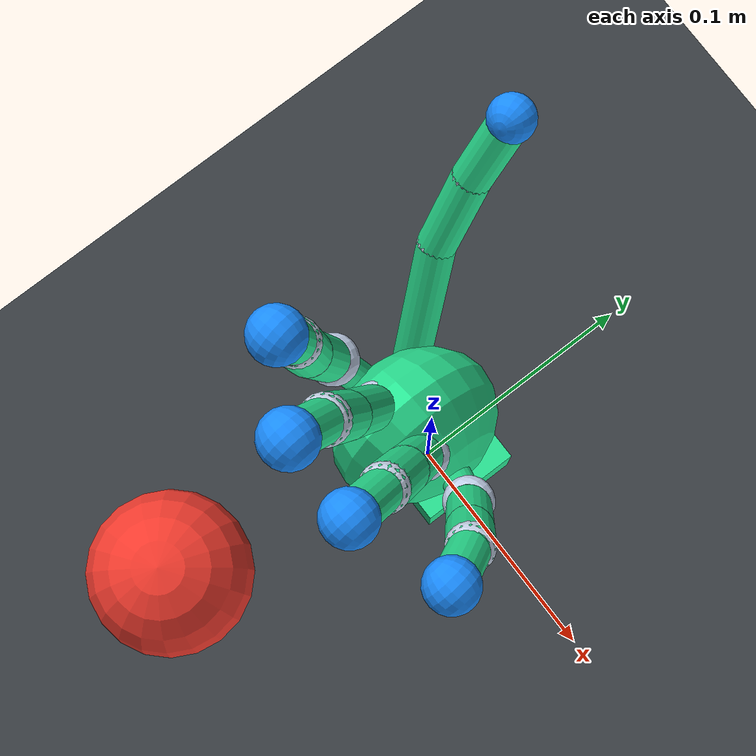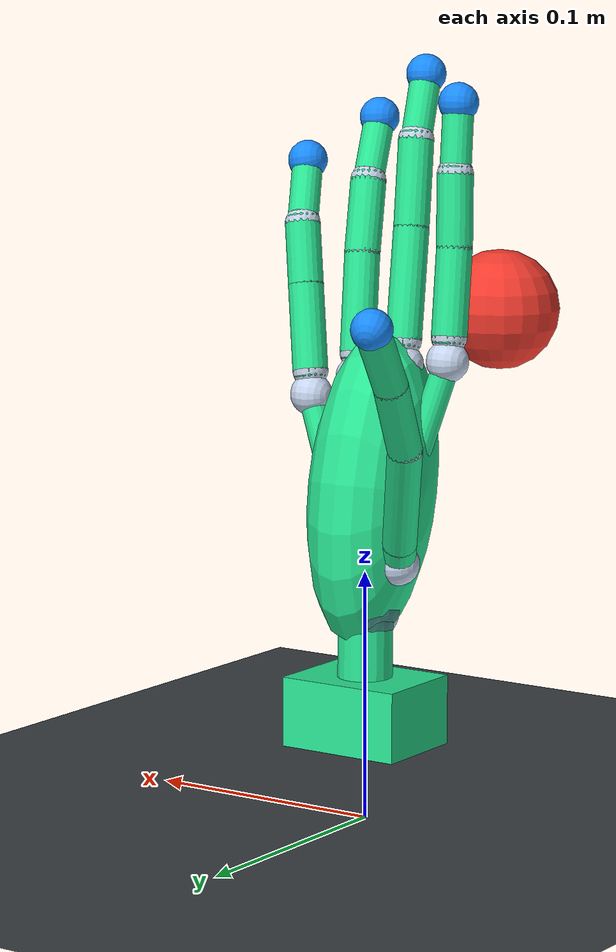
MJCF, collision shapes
<?xml version='1.0' encoding='utf-8'?>
<mujoco model="hand_stage1_ball_scene_visual_clean_collision_proxy">
  <include file="hand_stage1_visual_clean_collision_proxy.xml" />
  <visual>
    <global azimuth="145" elevation="-25" offwidth="1400" offheight="1000" />
  </visual>
  <asset>
    <texture type="2d" name="export2_ground_checker" builtin="checker" rgb1="0.18 0.20 0.22" rgb2="0.28 0.30 0.32" width="300" height="300" />
    <material name="export2_ground_mat" texture="export2_ground_checker" texrepeat="4 4" reflectance="0.15" />
  </asset>
  <worldbody>
    <light name="key_light" pos="0 -0.35 0.85" dir="0 0 -1" directional="true" />
    <light name="fill_light" pos="-0.35 0.25 0.55" />
    <geom name="ground" type="plane" pos="0 0 0" size="0.5 0.5 0.02" material="export2_ground_mat" contype="1" conaffinity="3" />
    <body name="ball" pos="0 -0.1 0.195">
      <freejoint name="ball_freejoint" />
      <geom name="ball_geom" type="sphere" size="0.025" rgba="0.95 0.23 0.18 1" mass="0.03" friction="0.8 0.05 0.001" condim="3" contype="2" conaffinity="1" />
    </body>
    <camera name="front" pos="0.20 -0.34 0.30" xyaxes="0.834219 0.551433 0 -0.16379 0.247785 0.954869" fovy="45" />
    <camera name="side" pos="0.34 0.02 0.25" xyaxes="-0.190477 0.981692 0 -0.169999 -0.0329848 0.984892" fovy="45" />
    <camera name="top" pos="0.02 -0.06 0.55" xyaxes="0.707107 0.707107 0 -0.705346 0.705346 0.0705346" fovy="45" />
    <camera name="palm" pos="0.11 -0.20 0.24" xyaxes="0.875 0.484 0 -0.204 0.368 0.907" fovy="34" />
    <camera name="finger_root_closeup" pos="0.11 -0.20 0.25" xyaxes="0.875 0.484 0 -0.204 0.368 0.907" fovy="24" />
    <camera name="thumb_root_closeup" pos="-0.15 -0.11 0.19" xyaxes="0.594 -0.804 0 0.372 0.275 0.887" fovy="26" />
    <camera name="index_finger_closeup" pos="-0.14 -0.17 0.36" xyaxes="0.844 -0.537 0 0.211 0.331 0.920" fovy="24" />
    <camera name="full_hand_with_ball" pos="0.23 -0.38 0.34" xyaxes="0.850 0.527 0 -0.165 0.267 0.949" fovy="48" />
  </worldbody>
</mujoco>

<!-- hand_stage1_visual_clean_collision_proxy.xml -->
<mujoco model="hand_stage1_visual_clean_collision_proxy">

  <compiler angle="radian" autolimits="true" meshdir="../meshes_clean_export2" />

  <option timestep="0.002" gravity="0 0 -9.81" />

  <default>

    <joint damping="0.08" armature="0.0001" />

    <geom solref="0.01 1" solimp="0.9 0.95 0.001" />

  </default>

  <statistic center="0.005 -0.045 0.18" extent="0.24" />

  <worldbody>

    <body name="hand_base_link" pos="0 0 0.05">

      <geom name="hand_base_link_clean_visual" type="mesh" mesh="hand_base_link_clean_mesh" rgba="0.78 0.82 0.90 1" contype="0" conaffinity="0" group="2" />
      <inertial pos="0 0 0" mass="0.012576523" diaginertia="1e-5 1e-5 1e-5" />

      <geom name="hand_base_link_collision_proxy" type="box" pos="0 0 -0.006" size="0.026 0.020 0.014" rgba="0.16 0.90 0.58 0.34" friction="0.8 0.04 0.001" contype="1" conaffinity="2" condim="3" group="3" />

      <geom name="hand_base_link_axis_marker" type="capsule" fromto="0 0 -0.020 0 0 0.020" size="0.006" rgba="0.58 0.64 0.74 1" contype="0" conaffinity="0" group="4" />

      <body name="wrist_middle_link" pos="0 0 0.015" quat="0.021731799 0.031494284 -0.70640636 -0.70677146">

        <geom name="wrist_middle_link_clean_visual" type="mesh" mesh="wrist_middle_link_clean_mesh" rgba="0.78 0.82 0.90 1" contype="0" conaffinity="0" group="2" />
        <joint name="wrist_1_joint" type="hinge" axis="0 0 -1" damping="0.08" armature="0.0001" limited="true" range="-0.8 0.8" />

        <inertial pos="0 0 0" mass="0.010062" diaginertia="1e-5 1e-5 1e-5" />

        <geom name="wrist_middle_link_collision_proxy" type="capsule" fromto="0 -0.018 0 0 0.018 0" size="0.011" rgba="0.16 0.90 0.58 0.34" friction="0.8 0.04 0.001" contype="1" conaffinity="2" condim="3" group="3" />

        <geom name="wrist_middle_link_joint_marker" type="sphere" pos="0 0 0" size="0.007" rgba="0.72 0.78 0.88 0.85" contype="0" conaffinity="0" group="4" />

        <body name="palm_link" pos="-0.0008 0.020264 -0.0007" quat="0.70420975 -0.063939763 -0.70421022 0.063939763">

          <geom name="palm_link_clean_visual" type="mesh" mesh="palm_link_clean_mesh" rgba="0.78 0.82 0.90 1" contype="0" conaffinity="0" group="2" />
          <joint name="wrist_2_joint" type="hinge" axis="0 0 -1" damping="0.08" armature="0.0001" limited="true" range="-0.8 0.8" />

          <inertial pos="0 0 0" mass="0.14137095" diaginertia="1e-5 1e-5 1e-5" />

          <geom name="palm_link_hub" type="sphere" pos="0 0 0" size="0.014" rgba="0.38 0.45 0.56 0.65" contype="0" conaffinity="0" group="4" />

          <geom name="palm_link_collision_proxy_ellipsoid" type="ellipsoid" pos="0 0.048 0.002" size="0.030 0.064 0.024" rgba="0.16 0.90 0.58 0.34" friction="0.8 0.04 0.001" contype="1" conaffinity="2" condim="3" group="3" />

          <geom name="palm_link_index_mcp_flex_joint_collision_proxy_spoke" type="capsule" fromto="0 0 0 -0.0014333 0.10034 -0.024803" size="0.0055" rgba="0.16 0.90 0.58 0.34" friction="0.8 0.04 0.001" contype="1" conaffinity="2" condim="3" group="3" />

          <geom name="palm_link_0_joint_marker" type="sphere" pos="-0.0014333 0.10034 -0.024803" size="0.0085" rgba="0.78 0.84 0.94 0.95" contype="0" conaffinity="0" group="4" />

          <geom name="palm_link_middle_mcp_flex_joint_collision_proxy_spoke" type="capsule" fromto="0 0 0 -0.0014333 0.097567 -0.0048026" size="0.0055" rgba="0.16 0.90 0.58 0.34" friction="0.8 0.04 0.001" contype="1" conaffinity="2" condim="3" group="3" />

          <geom name="palm_link_1_joint_marker" type="sphere" pos="-0.0014333 0.097567 -0.0048026" size="0.0085" rgba="0.78 0.84 0.94 0.95" contype="0" conaffinity="0" group="4" />

          <geom name="palm_link_ring_mcp_flex_joint_collision_proxy_spoke" type="capsule" fromto="0 0 0 -0.0014333 0.090989 0.015197" size="0.0055" rgba="0.16 0.90 0.58 0.34" friction="0.8 0.04 0.001" contype="1" conaffinity="2" condim="3" group="3" />

          <geom name="palm_link_2_joint_marker" type="sphere" pos="-0.0014333 0.090989 0.015197" size="0.0085" rgba="0.78 0.84 0.94 0.95" contype="0" conaffinity="0" group="4" />

          <geom name="palm_link_little_mcp_flex_joint_collision_proxy_spoke" type="capsule" fromto="0 0 0 -0.0014333 0.082348 0.035197" size="0.0055" rgba="0.16 0.90 0.58 0.34" friction="0.8 0.04 0.001" contype="1" conaffinity="2" condim="3" group="3" />

          <geom name="palm_link_3_joint_marker" type="sphere" pos="-0.0014333 0.082348 0.035197" size="0.0085" rgba="0.78 0.84 0.94 0.95" contype="0" conaffinity="0" group="4" />

          <geom name="palm_link_thumb_root_connector_fixed_joint_collision_proxy_spoke" type="capsule" fromto="0 0 0 0.0064688 0.019332 -0.016418" size="0.0055" rgba="0.16 0.90 0.58 0.34" friction="0.8 0.04 0.001" contype="1" conaffinity="2" condim="3" group="3" />

          <geom name="palm_link_4_joint_marker" type="sphere" pos="0.0064688 0.019332 -0.016418" size="0.0085" rgba="0.78 0.84 0.94 0.95" contype="0" conaffinity="0" group="4" />

          <body name="index_mcp_flex_link" pos="-0.0014333 0.10034 -0.024803" quat="0.70710548 0 0.70710808 0">

            <geom name="index_mcp_flex_link_clean_visual" type="mesh" mesh="index_mcp_flex_link_clean_mesh" rgba="0.78 0.82 0.90 1" contype="0" conaffinity="0" group="2" />
            <joint name="index_mcp_flex_joint" type="hinge" axis="0 0 -1" damping="0.08" armature="0.0001" limited="true" range="-0.5 0.5" />

            <inertial pos="0 0 0" mass="0.0017548" diaginertia="1e-5 1e-5 1e-5" />

            <geom name="index_mcp_flex_link_collision_proxy" type="capsule" fromto="0 0 0 -0.00051676 0.0097417 -0.00026674" size="0.0058" rgba="0.16 0.90 0.58 0.34" friction="0.9 0.04 0.001" contype="1" conaffinity="2" condim="3" group="3" />

            <geom name="index_mcp_flex_link_base_marker" type="sphere" pos="0 0 0" size="0.0058" rgba="0.78 0.83 0.91 0.9" contype="0" conaffinity="0" group="4" />

            <geom name="index_mcp_flex_link_tip_marker" type="sphere" pos="-0.00051676 0.0097417 -0.00026674" size="0.0058" rgba="0.78 0.83 0.91 0.9" contype="0" conaffinity="0" group="4" />

            <body name="index_proximal_phalanx_link" pos="-0.00051676 0.0097417 -0.00026674" quat="0.70685724 -0.018735042 0.70685984 0.018735111">

              <geom name="index_proximal_phalanx_link_clean_visual" type="mesh" mesh="index_proximal_phalanx_link_clean_mesh" rgba="0.78 0.82 0.90 1" contype="0" conaffinity="0" group="2" />
              <joint name="index_mcp_abd_joint" type="hinge" axis="0 0 -1" damping="0.08" armature="0.0001" limited="true" range="-0.2 1.2" />

              <inertial pos="0 0 0" mass="0.0070311" diaginertia="1e-5 1e-5 1e-5" />

              <geom name="index_proximal_phalanx_link_collision_proxy" type="capsule" fromto="0 0 0 -0.00021096 0.034999 0.00025" size="0.0072" rgba="0.16 0.90 0.58 0.34" friction="0.9 0.04 0.001" contype="1" conaffinity="2" condim="3" group="3" />

              <geom name="index_proximal_phalanx_link_base_marker" type="sphere" pos="0 0 0" size="0.0072" rgba="0.78 0.83 0.91 0.9" contype="0" conaffinity="0" group="4" />

              <geom name="index_proximal_phalanx_link_tip_marker" type="sphere" pos="-0.00021096 0.034999 0.00025" size="0.0072" rgba="0.78 0.83 0.91 0.9" contype="0" conaffinity="0" group="4" />

              <body name="index_proximal_inter_link" pos="-0.00021096 0.034999 0.00025" quat="0.97605079 0.012184661 0.058846008 0.20907783">

                <geom name="index_proximal_inter_link_clean_visual" type="mesh" mesh="index_proximal_inter_link_clean_mesh" rgba="0.78 0.82 0.90 1" contype="0" conaffinity="0" group="2" />
                <joint name="index_pip_joint" type="hinge" axis="0.10977 -0.048393 -0.99278" damping="0.08" armature="0.0001" limited="true" range="0 1.57" />

                <inertial pos="0 0 0" mass="0.0059704873" diaginertia="1e-5 1e-5 1e-5" />

                <geom name="index_proximal_inter_link_collision_proxy" type="capsule" fromto="0 0 0 0.0097266 0.027252 -0.00045437" size="0.0072" rgba="0.16 0.90 0.58 0.34" friction="0.9 0.04 0.001" contype="1" conaffinity="2" condim="3" group="3" />

                <geom name="index_proximal_inter_link_base_marker" type="sphere" pos="0 0 0" size="0.0072" rgba="0.78 0.83 0.91 0.9" contype="0" conaffinity="0" group="4" />

                <geom name="index_proximal_inter_link_tip_marker" type="sphere" pos="0.0097266 0.027252 -0.00045437" size="0.0072" rgba="0.78 0.83 0.91 0.9" contype="0" conaffinity="0" group="4" />

                <body name="index_distal_link" pos="0.0097266 0.027252 -0.00045437" quat="1 0 0 0">

                  <geom name="index_distal_link_clean_visual" type="mesh" mesh="index_distal_link_clean_mesh" rgba="0.78 0.82 0.90 1" contype="0" conaffinity="0" group="2" />
                  <joint name="index_dip_joint" type="hinge" axis="0 0 -1" damping="0.08" armature="0.0001" limited="true" range="0 1.2" />

                  <inertial pos="0 0 0" mass="0.0053528" diaginertia="1e-5 1e-5 1e-5" />

                  <geom name="index_distal_link_collision_proxy" type="capsule" fromto="0 0 0 0.011092027 0.02570919 -6.7061438e-05" size="0.0062" rgba="0.16 0.90 0.58 0.34" friction="0.9 0.04 0.001" contype="1" conaffinity="2" condim="3" group="3" />

                  <site name="index_tip_site" pos="0.011092027 0.02570919 -6.7061438e-05" size="0.008" rgba="0.10 0.55 1.0 1" type="sphere" />

                  <geom name="index_distal_link_base_marker" type="sphere" pos="0 0 0" size="0.0062" rgba="0.78 0.83 0.91 0.9" contype="0" conaffinity="0" group="4" />

                  <geom name="index_distal_link_tip_marker" type="sphere" pos="0.011092027 0.02570919 -6.7061438e-05" size="0.0062" rgba="0.78 0.83 0.91 0.9" contype="0" conaffinity="0" group="4" />

                </body>

              </body>

            </body>

          </body>

          <body name="middle_mcp_flex_link" pos="-0.0014333 0.097567 -0.0048026" quat="0.70710548 0 0.70710808 0">

            <geom name="middle_mcp_flex_link_clean_visual" type="mesh" mesh="middle_mcp_flex_link_clean_mesh" rgba="0.78 0.82 0.90 1" contype="0" conaffinity="0" group="2" />
            <joint name="middle_mcp_flex_joint" type="hinge" axis="0 0 -1" damping="0.08" armature="0.0001" limited="true" range="-0.5 0.5" />

            <inertial pos="0 0 0" mass="0.0017548053" diaginertia="1e-5 1e-5 1e-5" />

            <geom name="middle_mcp_flex_link_collision_proxy" type="capsule" fromto="0 0 0 -0.00064254 0.0097342 -0.00026674" size="0.0058" rgba="0.16 0.90 0.58 0.34" friction="0.9 0.04 0.001" contype="1" conaffinity="2" condim="3" group="3" />

            <geom name="middle_mcp_flex_link_base_marker" type="sphere" pos="0 0 0" size="0.0058" rgba="0.78 0.83 0.91 0.9" contype="0" conaffinity="0" group="4" />

            <geom name="middle_mcp_flex_link_tip_marker" type="sphere" pos="-0.00064254 0.0097342 -0.00026674" size="0.0058" rgba="0.78 0.83 0.91 0.9" contype="0" conaffinity="0" group="4" />

            <body name="middle_proximal_phalanx_link" pos="-0.00064254 0.0097342 -0.00026674" quat="0.48325474 0.48325652 0.51620245 0.51620056">

              <geom name="middle_proximal_phalanx_link_clean_visual" type="mesh" mesh="middle_proximal_phalanx_link_clean_mesh" rgba="0.78 0.82 0.90 1" contype="0" conaffinity="0" group="2" />
              <joint name="middle_mcp_abd_joint" type="hinge" axis="0 0 -1" damping="0.08" armature="0.0001" limited="true" range="-0.2 1.2" />

              <inertial pos="0 0 0" mass="0.0090532579" diaginertia="1e-5 1e-5 1e-5" />

              <geom name="middle_proximal_phalanx_link_collision_proxy" type="capsule" fromto="0 0 0 0.044915 -0.0027578 -0.0003" size="0.0072" rgba="0.16 0.90 0.58 0.34" friction="0.9 0.04 0.001" contype="1" conaffinity="2" condim="3" group="3" />

              <geom name="middle_proximal_phalanx_link_base_marker" type="sphere" pos="0 0 0" size="0.0072" rgba="0.78 0.83 0.91 0.9" contype="0" conaffinity="0" group="4" />

              <geom name="middle_proximal_phalanx_link_tip_marker" type="sphere" pos="0.044915 -0.0027578 -0.0003" size="0.0072" rgba="0.78 0.83 0.91 0.9" contype="0" conaffinity="0" group="4" />

              <body name="middle_proximal_inter_link" pos="0.044915 -0.0027578 -0.0003" quat="1 0 0 0">

                <geom name="middle_proximal_inter_link_clean_visual" type="mesh" mesh="middle_proximal_inter_link_clean_mesh" rgba="0.78 0.82 0.90 1" contype="0" conaffinity="0" group="2" />
                <joint name="middle_pip_joint" type="hinge" axis="0 0 -1" damping="0.08" armature="0.0001" limited="true" range="0 1.57" />

                <inertial pos="0 0 0" mass="0.0073249127" diaginertia="1e-5 1e-5 1e-5" />

                <geom name="middle_proximal_inter_link_collision_proxy" type="capsule" fromto="0 0 0 0.03498 -0.0011685 -0.0002" size="0.0072" rgba="0.16 0.90 0.58 0.34" friction="0.9 0.04 0.001" contype="1" conaffinity="2" condim="3" group="3" />

                <geom name="middle_proximal_inter_link_base_marker" type="sphere" pos="0 0 0" size="0.0072" rgba="0.78 0.83 0.91 0.9" contype="0" conaffinity="0" group="4" />

                <geom name="middle_proximal_inter_link_tip_marker" type="sphere" pos="0.03498 -0.0011685 -0.0002" size="0.0072" rgba="0.78 0.83 0.91 0.9" contype="0" conaffinity="0" group="4" />

                <body name="middle_distal_link" pos="0.03498 -0.0011685 -0.0002" quat="1 0 0 0">

                  <geom name="middle_distal_link_clean_visual" type="mesh" mesh="middle_distal_link_clean_mesh" rgba="0.78 0.82 0.90 1" contype="0" conaffinity="0" group="2" />
                  <joint name="middle_dip_joint" type="hinge" axis="0 0 -1" damping="0.08" armature="0.0001" limited="true" range="0 1.2" />

                  <inertial pos="0 0 0" mass="0.0053530376" diaginertia="1e-5 1e-5 1e-5" />

                  <geom name="middle_distal_link_collision_proxy" type="capsule" fromto="0 0 0 0.027301483 -0.006215095 -4.054405e-05" size="0.0062" rgba="0.16 0.90 0.58 0.34" friction="0.9 0.04 0.001" contype="1" conaffinity="2" condim="3" group="3" />

                  <site name="middle_tip_site" pos="0.027301483 -0.006215095 -4.054405e-05" size="0.008" rgba="0.10 0.55 1.0 1" type="sphere" />

                  <geom name="middle_distal_link_base_marker" type="sphere" pos="0 0 0" size="0.0062" rgba="0.78 0.83 0.91 0.9" contype="0" conaffinity="0" group="4" />

                  <geom name="middle_distal_link_tip_marker" type="sphere" pos="0.027301483 -0.006215095 -4.054405e-05" size="0.0062" rgba="0.78 0.83 0.91 0.9" contype="0" conaffinity="0" group="4" />

                </body>

              </body>

            </body>

          </body>

          <body name="ring_mcp_flex_link" pos="-0.0014333 0.090989 0.015197" quat="0.70710548 0 0.70710808 0">

            <geom name="ring_mcp_flex_link_clean_visual" type="mesh" mesh="ring_mcp_flex_link_clean_mesh" rgba="0.78 0.82 0.90 1" contype="0" conaffinity="0" group="2" />
            <joint name="ring_mcp_flex_joint" type="hinge" axis="-0.996 -0.089367 0" damping="0.08" armature="0.0001" limited="true" range="-0.5 0.5" />

            <inertial pos="0 0 0" mass="0.0017548" diaginertia="1e-5 1e-5 1e-5" />

            <geom name="ring_mcp_flex_link_collision_proxy" type="capsule" fromto="0 0 0 -0.00087181 0.0097164 -0.00026674" size="0.0058" rgba="0.16 0.90 0.58 0.34" friction="0.9 0.04 0.001" contype="1" conaffinity="2" condim="3" group="3" />

            <geom name="ring_mcp_flex_link_base_marker" type="sphere" pos="0 0 0" size="0.0058" rgba="0.78 0.83 0.91 0.9" contype="0" conaffinity="0" group="4" />

            <geom name="ring_mcp_flex_link_tip_marker" type="sphere" pos="-0.00087181 0.0097164 -0.00026674" size="0.0058" rgba="0.78 0.83 0.91 0.9" contype="0" conaffinity="0" group="4" />

            <body name="ring_proximal_phalanx_link" pos="-0.00087181 0.0097164 -0.00026674" quat="0.47713008 0.47713183 0.52186881 0.52186689">

              <geom name="ring_proximal_phalanx_link_clean_visual" type="mesh" mesh="ring_proximal_phalanx_link_clean_mesh" rgba="0.78 0.82 0.90 1" contype="0" conaffinity="0" group="2" />
              <joint name="ring_mcp_abd_joint" type="hinge" axis="0 0 -1" damping="0.08" armature="0.0001" limited="true" range="-0.2 1.2" />

              <inertial pos="0 0 0" mass="0.0079217428" diaginertia="1e-5 1e-5 1e-5" />

              <geom name="ring_proximal_phalanx_link_collision_proxy" type="capsule" fromto="0 0 0 0.039933 -0.0023102 -0.0003" size="0.0072" rgba="0.16 0.90 0.58 0.34" friction="0.9 0.04 0.001" contype="1" conaffinity="2" condim="3" group="3" />

              <geom name="ring_proximal_phalanx_link_base_marker" type="sphere" pos="0 0 0" size="0.0072" rgba="0.78 0.83 0.91 0.9" contype="0" conaffinity="0" group="4" />

              <geom name="ring_proximal_phalanx_link_tip_marker" type="sphere" pos="0.039933 -0.0023102 -0.0003" size="0.0072" rgba="0.78 0.83 0.91 0.9" contype="0" conaffinity="0" group="4" />

              <body name="ring_proximal_inter_link" pos="0.039933 -0.0023102 -0.0003" quat="0.70710548 0 0 -0.70710808">

                <geom name="ring_proximal_inter_link_clean_visual" type="mesh" mesh="ring_proximal_inter_link_clean_mesh" rgba="0.78 0.82 0.90 1" contype="0" conaffinity="0" group="2" />
                <joint name="ring_pip_joint" type="hinge" axis="0 0 -1" damping="0.08" armature="0.0001" limited="true" range="0 1.57" />

                <inertial pos="0 0 0" mass="0.0062089763" diaginertia="1e-5 1e-5 1e-5" />

                <geom name="ring_proximal_inter_link_collision_proxy" type="capsule" fromto="0 0 0 0.0039743 0.029736 -0.0002" size="0.0072" rgba="0.16 0.90 0.58 0.34" friction="0.9 0.04 0.001" contype="1" conaffinity="2" condim="3" group="3" />

                <geom name="ring_proximal_inter_link_base_marker" type="sphere" pos="0 0 0" size="0.0072" rgba="0.78 0.83 0.91 0.9" contype="0" conaffinity="0" group="4" />

                <geom name="ring_proximal_inter_link_tip_marker" type="sphere" pos="0.0039743 0.029736 -0.0002" size="0.0072" rgba="0.78 0.83 0.91 0.9" contype="0" conaffinity="0" group="4" />

                <body name="ring_distal_link" pos="0.0039743 0.029736 -0.0002" quat="0.70710548 0 0 0.70710808">

                  <geom name="ring_distal_link_clean_visual" type="mesh" mesh="ring_distal_link_clean_mesh" rgba="0.78 0.82 0.90 1" contype="0" conaffinity="0" group="2" />
                  <joint name="ring_dip_joint" type="hinge" axis="0 0 -1" damping="0.08" armature="0.0001" limited="true" range="0 1.2" />

                  <inertial pos="0 0 0" mass="0.0053519" diaginertia="1e-5 1e-5 1e-5" />

                  <geom name="ring_distal_link_collision_proxy" type="capsule" fromto="0 0 0 0.02673319 -0.008326736 -4.4812211e-05" size="0.0062" rgba="0.16 0.90 0.58 0.34" friction="0.9 0.04 0.001" contype="1" conaffinity="2" condim="3" group="3" />

                  <site name="ring_tip_site" pos="0.02673319 -0.008326736 -4.4812211e-05" size="0.008" rgba="0.10 0.55 1.0 1" type="sphere" />

                  <geom name="ring_distal_link_base_marker" type="sphere" pos="0 0 0" size="0.0062" rgba="0.78 0.83 0.91 0.9" contype="0" conaffinity="0" group="4" />

                  <geom name="ring_distal_link_tip_marker" type="sphere" pos="0.02673319 -0.008326736 -4.4812211e-05" size="0.0062" rgba="0.78 0.83 0.91 0.9" contype="0" conaffinity="0" group="4" />

                </body>

              </body>

            </body>

          </body>

          <body name="little_mcp_flex_link" pos="-0.0014333 0.082348 0.035197" quat="0.70710548 0 0.70710808 0">

            <geom name="little_mcp_flex_link_clean_visual" type="mesh" mesh="little_mcp_flex_link_clean_mesh" rgba="0.78 0.82 0.90 1" contype="0" conaffinity="0" group="2" />
            <joint name="little_mcp_flex_joint" type="hinge" axis="0 0 -1" damping="0.08" armature="0.0001" limited="true" range="-0.5 0.5" />

            <inertial pos="0 0 0" mass="0.0017548056" diaginertia="1e-5 1e-5 1e-5" />

            <geom name="little_mcp_flex_link_collision_proxy" type="capsule" fromto="0 0 0 -0.0018088 0.0095862 -0.00026674" size="0.0058" rgba="0.16 0.90 0.58 0.34" friction="0.9 0.04 0.001" contype="1" conaffinity="2" condim="3" group="3" />

            <geom name="little_mcp_flex_link_base_marker" type="sphere" pos="0 0 0" size="0.0058" rgba="0.78 0.83 0.91 0.9" contype="0" conaffinity="0" group="4" />

            <geom name="little_mcp_flex_link_tip_marker" type="sphere" pos="-0.0018088 0.0095862 -0.00026674" size="0.0058" rgba="0.78 0.83 0.91 0.9" contype="0" conaffinity="0" group="4" />

            <body name="little_proximal_phalanx_link" pos="-0.0018088 0.0095862 -0.00026674" quat="0.4512684 0.45127006 0.54438697 0.54438497">

              <geom name="little_proximal_phalanx_link_clean_visual" type="mesh" mesh="little_proximal_phalanx_link_clean_mesh" rgba="0.78 0.82 0.90 1" contype="0" conaffinity="0" group="2" />
              <joint name="little_mcp_abd_joint" type="hinge" axis="0 0 -1" damping="0.08" armature="0.0001" limited="true" range="-0.2 1.2" />

              <inertial pos="0 0 0" mass="0.0070532455" diaginertia="1e-5 1e-5 1e-5" />

              <geom name="little_proximal_phalanx_link_collision_proxy" type="capsule" fromto="0 0 0 0.034983 -0.0010805 -0.0003" size="0.0072" rgba="0.16 0.90 0.58 0.34" friction="0.9 0.04 0.001" contype="1" conaffinity="2" condim="3" group="3" />

              <geom name="little_proximal_phalanx_link_base_marker" type="sphere" pos="0 0 0" size="0.0072" rgba="0.78 0.83 0.91 0.9" contype="0" conaffinity="0" group="4" />

              <geom name="little_proximal_phalanx_link_tip_marker" type="sphere" pos="0.034983 -0.0010805 -0.0003" size="0.0072" rgba="0.78 0.83 0.91 0.9" contype="0" conaffinity="0" group="4" />

              <body name="little_proximal_inter_link" pos="0.034983 -0.0010805 -0.0003" quat="0.70710548 0 0 -0.70710808">

                <geom name="little_proximal_inter_link_clean_visual" type="mesh" mesh="little_proximal_inter_link_clean_mesh" rgba="0.78 0.82 0.90 1" contype="0" conaffinity="0" group="2" />
                <joint name="little_pip_joint" type="hinge" axis="0 0 -1" damping="0.08" armature="0.0001" limited="true" range="0 1.57" />

                <inertial pos="0 0 0" mass="0.0050879458" diaginertia="1e-5 1e-5 1e-5" />

                <geom name="little_proximal_inter_link_collision_proxy" type="capsule" fromto="0 0 0 0.00077177 0.024988 -0.0002" size="0.0072" rgba="0.16 0.90 0.58 0.34" friction="0.9 0.04 0.001" contype="1" conaffinity="2" condim="3" group="3" />

                <geom name="little_proximal_inter_link_base_marker" type="sphere" pos="0 0 0" size="0.0072" rgba="0.78 0.83 0.91 0.9" contype="0" conaffinity="0" group="4" />

                <geom name="little_proximal_inter_link_tip_marker" type="sphere" pos="0.00077177 0.024988 -0.0002" size="0.0072" rgba="0.78 0.83 0.91 0.9" contype="0" conaffinity="0" group="4" />

                <body name="little_distal_link" pos="0.00077177 0.024988 -0.0002" quat="0.70710548 0 0 0.70710808">

                  <geom name="little_distal_link_clean_visual" type="mesh" mesh="little_distal_link_clean_mesh" rgba="0.78 0.82 0.90 1" contype="0" conaffinity="0" group="2" />
                  <joint name="little_dip_joint" type="hinge" axis="0 0 -1" damping="0.08" armature="0.0001" limited="true" range="0 1.2" />

                  <inertial pos="0 0 0" mass="0.0053522" diaginertia="1e-5 1e-5 1e-5" />

                  <geom name="little_distal_link_collision_proxy" type="capsule" fromto="0 0 0 0.026961144 -0.007556097 -4.6194307e-05" size="0.0062" rgba="0.16 0.90 0.58 0.34" friction="0.9 0.04 0.001" contype="1" conaffinity="2" condim="3" group="3" />

                  <site name="little_tip_site" pos="0.026961144 -0.007556097 -4.6194307e-05" size="0.008" rgba="0.10 0.55 1.0 1" type="sphere" />

                  <geom name="little_distal_link_base_marker" type="sphere" pos="0 0 0" size="0.0062" rgba="0.78 0.83 0.91 0.9" contype="0" conaffinity="0" group="4" />

                  <geom name="little_distal_link_tip_marker" type="sphere" pos="0.026961144 -0.007556097 -4.6194307e-05" size="0.0062" rgba="0.78 0.83 0.91 0.9" contype="0" conaffinity="0" group="4" />

                </body>

              </body>

            </body>

          </body>

          <body name="thumb_root_connector_link" pos="0.0064688 0.019332 -0.016418" quat="0.24716295 -0.24716268 -0.5330396 0.77051273">

            <geom name="thumb_root_connector_link_clean_visual" type="mesh" mesh="thumb_root_connector_link_clean_mesh" rgba="0.78 0.82 0.90 1" contype="0" conaffinity="0" group="2" />
            <inertial pos="0 0 0" mass="0.0024893708" diaginertia="1e-5 1e-5 1e-5" />

            <geom name="thumb_root_connector_link_collision_proxy" type="capsule" fromto="0 0 0 -6.3364e-05 0.00012377 -0.011586" size="0.0068" rgba="0.16 0.90 0.58 0.34" friction="0.9 0.04 0.001" contype="1" conaffinity="2" condim="3" group="3" />

            <geom name="thumb_root_connector_link_base_marker" type="sphere" pos="0 0 0" size="0.0068" rgba="0.78 0.83 0.91 0.9" contype="0" conaffinity="0" group="4" />

            <geom name="thumb_root_connector_link_tip_marker" type="sphere" pos="-6.3364e-05 0.00012377 -0.011586" size="0.0068" rgba="0.78 0.83 0.91 0.9" contype="0" conaffinity="0" group="4" />

            <body name="thumb_metacarpal_link" pos="-6.3364e-05 0.00012377 -0.011586" quat="0.32938029 -0.50061516 0.49011734 -0.63299138">

              <geom name="thumb_metacarpal_link_clean_visual" type="mesh" mesh="thumb_metacarpal_link_clean_mesh" rgba="0.78 0.82 0.90 1" contype="0" conaffinity="0" group="2" />
              <joint name="thumb_cmc_joint" type="hinge" axis="0 0 -1" damping="0.08" armature="0.0001" limited="true" range="-0.8 0.8" />

              <inertial pos="0 0 0" mass="0.012375298" diaginertia="1e-5 1e-5 1e-5" />

              <geom name="thumb_metacarpal_link_collision_proxy" type="capsule" fromto="0 0 0 -0.016224 0.049404 -0.000175" size="0.0068" rgba="0.16 0.90 0.58 0.34" friction="0.9 0.04 0.001" contype="1" conaffinity="2" condim="3" group="3" />

              <geom name="thumb_metacarpal_link_base_marker" type="sphere" pos="0 0 0" size="0.0068" rgba="0.78 0.83 0.91 0.9" contype="0" conaffinity="0" group="4" />

              <geom name="thumb_metacarpal_link_tip_marker" type="sphere" pos="-0.016224 0.049404 -0.000175" size="0.0068" rgba="0.78 0.83 0.91 0.9" contype="0" conaffinity="0" group="4" />

              <body name="thumb_proximal_link" pos="-0.016224 0.049404 -0.000175" quat="1 0 0 0">

                <geom name="thumb_proximal_link_clean_visual" type="mesh" mesh="thumb_proximal_link_clean_mesh" rgba="0.78 0.82 0.90 1" contype="0" conaffinity="0" group="2" />
                <joint name="thumb_mcp_joint" type="hinge" axis="0 0 -1" damping="0.08" armature="0.0001" limited="true" range="0 1.2" />

                <inertial pos="0 0 0" mass="0.0062816" diaginertia="1e-5 1e-5 1e-5" />

                <geom name="thumb_proximal_link_collision_proxy" type="capsule" fromto="0 0 0 -0.0033345 0.031826 -0.000105" size="0.0068" rgba="0.16 0.90 0.58 0.34" friction="0.9 0.04 0.001" contype="1" conaffinity="2" condim="3" group="3" />

                <geom name="thumb_proximal_link_base_marker" type="sphere" pos="0 0 0" size="0.0068" rgba="0.78 0.83 0.91 0.9" contype="0" conaffinity="0" group="4" />

                <geom name="thumb_proximal_link_tip_marker" type="sphere" pos="-0.0033345 0.031826 -0.000105" size="0.0068" rgba="0.78 0.83 0.91 0.9" contype="0" conaffinity="0" group="4" />

                <body name="thumb_distal_link" pos="-0.0033345 0.031826 -0.000105" quat="-3.6732051e-06 -0 0 1">

                  <geom name="thumb_distal_link_clean_visual" type="mesh" mesh="thumb_distal_link_clean_mesh" rgba="0.78 0.82 0.90 1" contype="0" conaffinity="0" group="2" />
                  <joint name="thumb_ip_joint" type="hinge" axis="0 0 1" damping="0.08" armature="0.0001" limited="true" range="0 1.2" />

                  <inertial pos="0 0 0" mass="0.0073168" diaginertia="1e-5 1e-5 1e-5" />

                  <geom name="thumb_distal_link_collision_proxy" type="capsule" fromto="0 0 0 0.00052061935 -0.027995157 -1.2280723e-05" size="0.0068" rgba="0.16 0.90 0.58 0.34" friction="0.9 0.04 0.001" contype="1" conaffinity="2" condim="3" group="3" />

                  <site name="thumb_tip_site" pos="0.00052061935 -0.027995157 -1.2280723e-05" size="0.008" rgba="0.10 0.55 1.0 1" type="sphere" />

                  <geom name="thumb_distal_link_base_marker" type="sphere" pos="0 0 0" size="0.0068" rgba="0.78 0.83 0.91 0.9" contype="0" conaffinity="0" group="4" />

                  <geom name="thumb_distal_link_tip_marker" type="sphere" pos="0.00052061935 -0.027995157 -1.2280723e-05" size="0.0068" rgba="0.78 0.83 0.91 0.9" contype="0" conaffinity="0" group="4" />

                </body>

              </body>

            </body>

          </body>

        </body>

      </body>

    </body>

  </worldbody>

  <asset>
    <mesh name="hand_base_link_clean_mesh" file="hand_base_link.STL" scale="1 1 1" />
    <mesh name="index_distal_link_clean_mesh" file="index_distal_link.STL" scale="1 1 1" />
    <mesh name="index_mcp_flex_link_clean_mesh" file="index_mcp_flex_link.STL" scale="1 1 1" />
    <mesh name="index_proximal_inter_link_clean_mesh" file="index_proximal_inter_link.STL" scale="1 1 1" />
    <mesh name="index_proximal_phalanx_link_clean_mesh" file="index_proximal_phalanx_link.STL" scale="1 1 1" />
    <mesh name="little_distal_link_clean_mesh" file="little_distal_link.STL" scale="1 1 1" />
    <mesh name="little_mcp_flex_link_clean_mesh" file="little_mcp_flex_link.STL" scale="1 1 1" />
    <mesh name="little_proximal_inter_link_clean_mesh" file="little_proximal_inter_link.STL" scale="1 1 1" />
    <mesh name="little_proximal_phalanx_link_clean_mesh" file="little_proximal_phalanx_link.STL" scale="1 1 1" />
    <mesh name="middle_distal_link_clean_mesh" file="middle_distal_link.STL" scale="1 1 1" />
    <mesh name="middle_mcp_flex_link_clean_mesh" file="middle_mcp_flex_link.STL" scale="1 1 1" />
    <mesh name="middle_proximal_inter_link_clean_mesh" file="middle_proximal_inter_link.STL" scale="1 1 1" />
    <mesh name="middle_proximal_phalanx_link_clean_mesh" file="middle_proximal_phalanx_link.STL" scale="1 1 1" />
    <mesh name="palm_link_clean_mesh" file="palm_link.STL" scale="1 1 1" />
    <mesh name="ring_distal_link_clean_mesh" file="ring_distal_link.STL" scale="1 1 1" />
    <mesh name="ring_mcp_flex_link_clean_mesh" file="ring_mcp_flex_link.STL" scale="1 1 1" />
    <mesh name="ring_proximal_inter_link_clean_mesh" file="ring_proximal_inter_link.STL" scale="1 1 1" />
    <mesh name="ring_proximal_phalanx_link_clean_mesh" file="ring_proximal_phalanx_link.STL" scale="1 1 1" />
    <mesh name="thumb_distal_link_clean_mesh" file="thumb_distal_link.STL" scale="1 1 1" />
    <mesh name="thumb_metacarpal_link_clean_mesh" file="thumb_metacarpal_link.STL" scale="1 1 1" />
    <mesh name="thumb_proximal_link_clean_mesh" file="thumb_proximal_link.STL" scale="1 1 1" />
    <mesh name="thumb_root_connector_link_clean_mesh" file="thumb_root_connector_link.STL" scale="1 1 1" />
    <mesh name="wrist_middle_link_clean_mesh" file="wrist_middle_link.STL" scale="1 1 1" />
  </asset>
<actuator><position name="wrist_1_joint_pos" joint="wrist_1_joint" kp="5" ctrllimited="true" ctrlrange="-0.8 0.8" /><position name="wrist_2_joint_pos" joint="wrist_2_joint" kp="5" ctrllimited="true" ctrlrange="-0.8 0.8" /><position name="index_mcp_flex_joint_pos" joint="index_mcp_flex_joint" kp="3" ctrllimited="true" ctrlrange="-0.5 0.5" /><position name="index_mcp_abd_joint_pos" joint="index_mcp_abd_joint" kp="3" ctrllimited="true" ctrlrange="-0.2 1.2" /><position name="index_pip_joint_pos" joint="index_pip_joint" kp="2" ctrllimited="true" ctrlrange="0 1.57" /><position name="index_dip_joint_pos" joint="index_dip_joint" kp="2" ctrllimited="true" ctrlrange="0 1.2" /><position name="middle_mcp_flex_joint_pos" joint="middle_mcp_flex_joint" kp="3" ctrllimited="true" ctrlrange="-0.5 0.5" /><position name="middle_mcp_abd_joint_pos" joint="middle_mcp_abd_joint" kp="3" ctrllimited="true" ctrlrange="-0.2 1.2" /><position name="middle_pip_joint_pos" joint="middle_pip_joint" kp="2" ctrllimited="true" ctrlrange="0 1.57" /><position name="middle_dip_joint_pos" joint="middle_dip_joint" kp="2" ctrllimited="true" ctrlrange="0 1.2" /><position name="ring_mcp_flex_joint_pos" joint="ring_mcp_flex_joint" kp="3" ctrllimited="true" ctrlrange="-0.5 0.5" /><position name="ring_mcp_abd_joint_pos" joint="ring_mcp_abd_joint" kp="3" ctrllimited="true" ctrlrange="-0.2 1.2" /><position name="ring_pip_joint_pos" joint="ring_pip_joint" kp="2" ctrllimited="true" ctrlrange="0 1.57" /><position name="ring_dip_joint_pos" joint="ring_dip_joint" kp="2" ctrllimited="true" ctrlrange="0 1.2" /><position name="little_mcp_flex_joint_pos" joint="little_mcp_flex_joint" kp="3" ctrllimited="true" ctrlrange="-0.5 0.5" /><position name="little_mcp_abd_joint_pos" joint="little_mcp_abd_joint" kp="3" ctrllimited="true" ctrlrange="-0.2 1.2" /><position name="little_pip_joint_pos" joint="little_pip_joint" kp="2" ctrllimited="true" ctrlrange="0 1.57" /><position name="little_dip_joint_pos" joint="little_dip_joint" kp="2" ctrllimited="true" ctrlrange="0 1.2" /><position name="thumb_cmc_joint_pos" joint="thumb_cmc_joint" kp="2" ctrllimited="true" ctrlrange="-0.8 0.8" /><position name="thumb_mcp_joint_pos" joint="thumb_mcp_joint" kp="2" ctrllimited="true" ctrlrange="0 1.2" /><position name="thumb_ip_joint_pos" joint="thumb_ip_joint" kp="2" ctrllimited="true" ctrlrange="0 1.2" /></actuator></mujoco>
